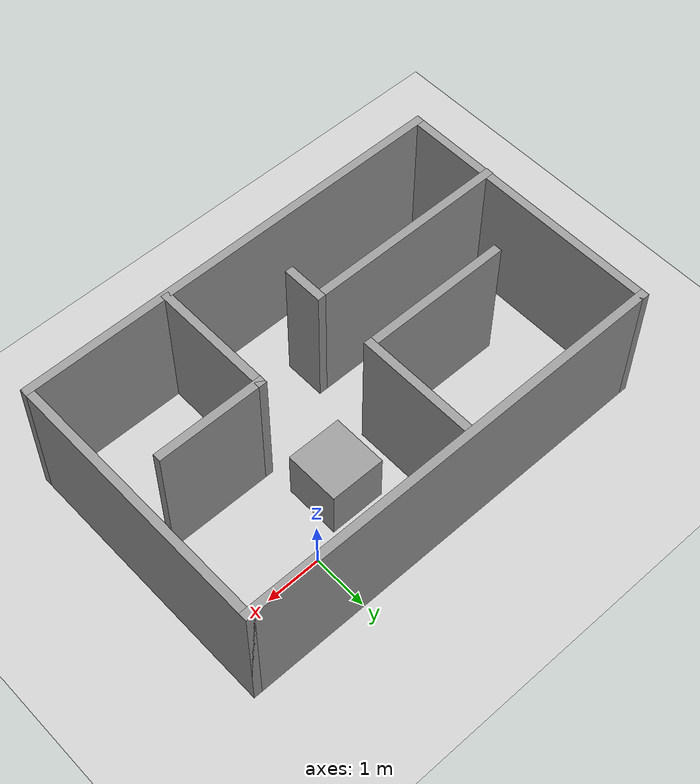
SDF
<sdf version="1.7">
 <world name="default">
  <light name="sun" type="directional">
   <pose>0 0 10 0 -0 0</pose>
   <diffuse>0.8 0.8 0.8 1</diffuse>
   <specular>0.2 0.2 0.2 1</specular>
   <attenuation>
    <range>1000</range>
    <constant>0.9</constant>
    <linear>0.01</linear>
    <quadratic>0.001</quadratic>
   </attenuation>
   <direction>-0.5 0.1 -0.9</direction>
   <spot><inner_angle>0</inner_angle><outer_angle>0</outer_angle><falloff>0</falloff></spot>
  </light>
  <model name="ground_plane">
   <static>1</static>
   <link name="link">
    <collision name="collision">
     <geometry><plane><normal>0 0 1</normal><size>100 100</size></plane></geometry>
     <surface>
      <contact><collide_bitmask>65535</collide_bitmask></contact>
      <friction><ode><mu>100</mu><mu2>50</mu2></ode></friction>
     </surface>
    </collision>
    <visual name="visual">
     <cast_shadows>0</cast_shadows>
     <geometry><plane><normal>0 0 1</normal><size>100 100</size></plane></geometry>
     <material>
      <script><uri>file://media/materials/scripts/gazebo.material</uri><name>Gazebo/Grey</name></script>
     </material>
    </visual>
   </link>
  </model>
  <gravity>0 0 -9.8</gravity>
  <magnetic_field>6e-06 2.3e-05 -4.2e-05</magnetic_field>
  <atmosphere type="adiabatic"/>
  <physics type="ode">
   <max_step_size>0.001</max_step_size>
   <real_time_factor>1</real_time_factor>
   <real_time_update_rate>1000</real_time_update_rate>
  </physics>
  <scene><ambient>0.4 0.4 0.4 1</ambient><background>0.7 0.7 0.7 1</background><shadows>1</shadows></scene>
  <audio><device>default</device></audio>
  <spherical_coordinates>
   <surface_model>EARTH_WGS84</surface_model>
   <latitude_deg>0</latitude_deg>
   <longitude_deg>0</longitude_deg>
   <elevation>0</elevation>
   <heading_deg>0</heading_deg>
  </spherical_coordinates>
  <model name="room">
   <pose>-1.83222 -0.941492 0 0 -0 0</pose>
   <link name="Wall_0">
    <collision name="Wall_0_Collision">
     <geometry><box><size>8 0.15 2.5</size></box></geometry>
     <pose>0 0 1.25 0 -0 0</pose>
    </collision>
    <visual name="Wall_0_Visual">
     <pose>0 0 1.25 0 -0 0</pose>
     <geometry><box><size>8 0.15 2.5</size></box></geometry>
     <material>
      <script><uri>file://media/materials/scripts/gazebo.material</uri><name>Gazebo/Grey</name></script>
      <ambient>1 1 1 1</ambient>
     </material>
     <meta><layer>0</layer></meta>
    </visual>
    <pose>0.005996 1.9025 0 0 -0 0</pose>
   </link>
   <link name="Wall_11">
    <collision name="Wall_11_Collision">
     <geometry><box><size>2.25 0.15 2.5</size></box></geometry>
     <pose>0 0 1.25 0 -0 0</pose>
    </collision>
    <visual name="Wall_11_Visual">
     <pose>0 0 1.25 0 -0 0</pose>
     <geometry><box><size>2.25 0.15 2.5</size></box></geometry>
     <material>
      <script><uri>file://media/materials/scripts/gazebo.material</uri><name>Gazebo/Grey</name></script>
      <ambient>1 1 1 1</ambient>
     </material>
     <meta><layer>0</layer></meta>
    </visual>
    <pose>-0.296105 0.849453 0 0 -0 -1.5708</pose>
   </link>
   <link name="Wall_12">
    <collision name="Wall_12_Collision">
     <geometry><box><size>2.75 0.15 2.5</size></box></geometry>
     <pose>0 0 1.25 0 -0 0</pose>
    </collision>
    <visual name="Wall_12_Visual">
     <pose>0 0 1.25 0 -0 0</pose>
     <geometry><box><size>2.75 0.15 2.5</size></box></geometry>
     <material>
      <script><uri>file://media/materials/scripts/gazebo.material</uri><name>Gazebo/Grey</name></script>
      <ambient>1 1 1 1</ambient>
     </material>
     <meta><layer>0</layer></meta>
    </visual>
    <pose>-1.59611 -0.200547 0 0 -0 3.14159</pose>
   </link>
   <link name="Wall_14">
    <collision name="Wall_14_Collision">
     <geometry><box><size>3.75 0.15 2.5</size></box></geometry>
     <pose>0 0 1.25 0 -0 0</pose>
    </collision>
    <visual name="Wall_14_Visual">
     <pose>0 0 1.25 0 -0 0</pose>
     <geometry><box><size>3.75 0.15 2.5</size></box></geometry>
     <material>
      <script><uri>file://media/materials/scripts/gazebo.material</uri><name>Gazebo/Grey</name></script>
      <ambient>1 1 1 1</ambient>
     </material>
     <meta><layer>0</layer></meta>
    </visual>
    <pose>-2.131 -1.38564 0 0 -0 0</pose>
   </link>
   <link name="Wall_15">
    <collision name="Wall_15_Collision">
     <geometry><box><size>0.75 0.15 2.5</size></box></geometry>
     <pose>0 0 1.25 0 -0 0</pose>
    </collision>
    <visual name="Wall_15_Visual">
     <pose>0 0 1.25 0 -0 0</pose>
     <geometry><box><size>0.75 0.15 2.5</size></box></geometry>
     <material>
      <script><uri>file://media/materials/scripts/gazebo.material</uri><name>Gazebo/Grey</name></script>
      <ambient>1 1 1 1</ambient>
     </material>
     <meta><layer>0</layer></meta>
    </visual>
    <pose>-0.330997 -1.68564 0 0 -0 -1.5708</pose>
   </link>
   <link name="Wall_17">
    <collision name="Wall_17_Collision">
     <geometry><box><size>2.25 0.15 2.5</size></box></geometry>
     <pose>0 0 1.25 0 -0 0</pose>
    </collision>
    <visual name="Wall_17_Visual">
     <pose>0 0 1.25 0 -0 0</pose>
     <geometry><box><size>2.25 0.15 2.5</size></box></geometry>
     <material>
      <script><uri>file://media/materials/scripts/gazebo.material</uri><name>Gazebo/Grey</name></script>
      <ambient>1 1 1 1</ambient>
     </material>
     <meta><layer>0</layer></meta>
    </visual>
    <pose>1.36165 -1.8413 0 0 -0 1.5708</pose>
   </link>
   <link name="Wall_18">
    <collision name="Wall_18_Collision">
     <geometry><box><size>2 0.15 2.5</size></box></geometry>
     <pose>0 0 1.25 0 -0 0</pose>
    </collision>
    <visual name="Wall_18_Visual">
     <pose>0 0 1.25 0 -0 0</pose>
     <geometry><box><size>2 0.15 2.5</size></box></geometry>
     <material>
      <script><uri>file://media/materials/scripts/gazebo.material</uri><name>Gazebo/Grey</name></script>
      <ambient>1 1 1 1</ambient>
     </material>
     <meta><layer>0</layer></meta>
    </visual>
    <pose>2.28665 -0.791303 0 0 -0 0</pose>
   </link>
   <link name="Wall_7">
    <collision name="Wall_7_Collision">
     <geometry><box><size>5 0.15 2.5</size></box></geometry>
     <pose>0 0 1.25 0 -0 0</pose>
    </collision>
    <visual name="Wall_7_Visual">
     <pose>0 0 1.25 0 -0 0</pose>
     <geometry><box><size>5 0.15 2.5</size></box></geometry>
     <material>
      <script><uri>file://media/materials/scripts/gazebo.material</uri><name>Gazebo/Grey</name></script>
      <ambient>1 1 1 1</ambient>
     </material>
     <meta><layer>0</layer></meta>
    </visual>
    <pose>3.931 -0.5225 0 0 -0 -1.5708</pose>
   </link>
   <link name="Wall_8">
    <collision name="Wall_8_Collision">
     <geometry><box><size>8 0.15 2.5</size></box></geometry>
     <pose>0 0 1.25 0 -0 0</pose>
    </collision>
    <visual name="Wall_8_Visual">
     <pose>0 0 1.25 0 -0 0</pose>
     <geometry><box><size>8 0.15 2.5</size></box></geometry>
     <material>
      <script><uri>file://media/materials/scripts/gazebo.material</uri><name>Gazebo/Grey</name></script>
      <ambient>1 1 1 1</ambient>
     </material>
     <meta><layer>0</layer></meta>
    </visual>
    <pose>0.005996 -2.9475 0 0 -0 3.14159</pose>
   </link>
   <link name="Wall_9">
    <collision name="Wall_9_Collision">
     <geometry><box><size>5 0.15 2.5</size></box></geometry>
     <pose>0 0 1.25 0 -0 0</pose>
    </collision>
    <visual name="Wall_9_Visual">
     <pose>0 0 1.25 0 -0 0</pose>
     <geometry><box><size>5 0.15 2.5</size></box></geometry>
     <material>
      <script><uri>file://media/materials/scripts/gazebo.material</uri><name>Gazebo/Grey</name></script>
      <ambient>1 1 1 1</ambient>
     </material>
     <meta><layer>0</layer></meta>
    </visual>
    <pose>-3.919 -0.5225 0 0 -0 1.5708</pose>
   </link>
   <static>1</static>
  </model>
  <model name="unit_box">
   <pose>-1.01582 -0.70182 0.499995 0 1e-05 2e-06</pose>
   <link name="link">
    <inertial>
     <mass>1</mass>
     <inertia>
      <ixx>0.166667</ixx>
      <ixy>0</ixy>
      <ixz>0</ixz>
      <iyy>0.166667</iyy>
      <iyz>0</iyz>
      <izz>0.166667</izz>
     </inertia>
    </inertial>
    <collision name="collision"><geometry><box><size>1 1 1</size></box></geometry></collision>
    <visual name="visual">
     <geometry><box><size>1 1 1</size></box></geometry>
     <material>
      <script><name>Gazebo/Grey</name><uri>file://media/materials/scripts/gazebo.material</uri></script>
     </material>
    </visual>
   </link>
  </model>
 </world>
</sdf>
